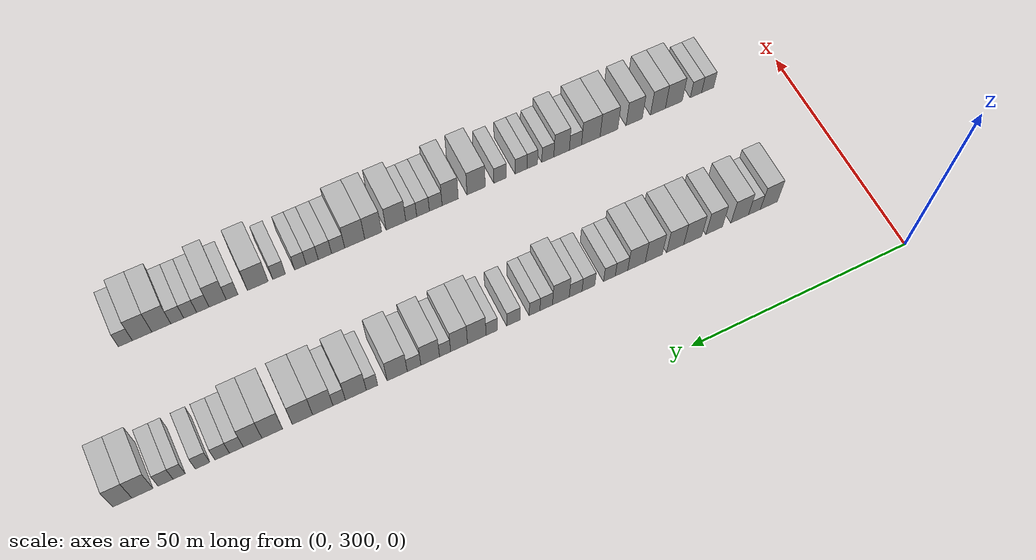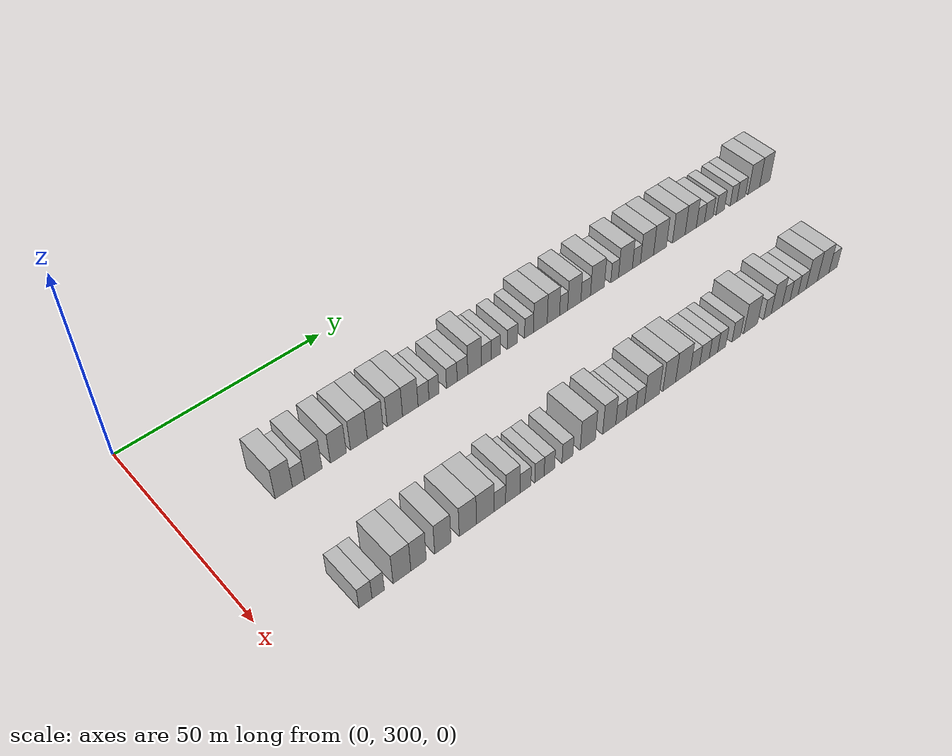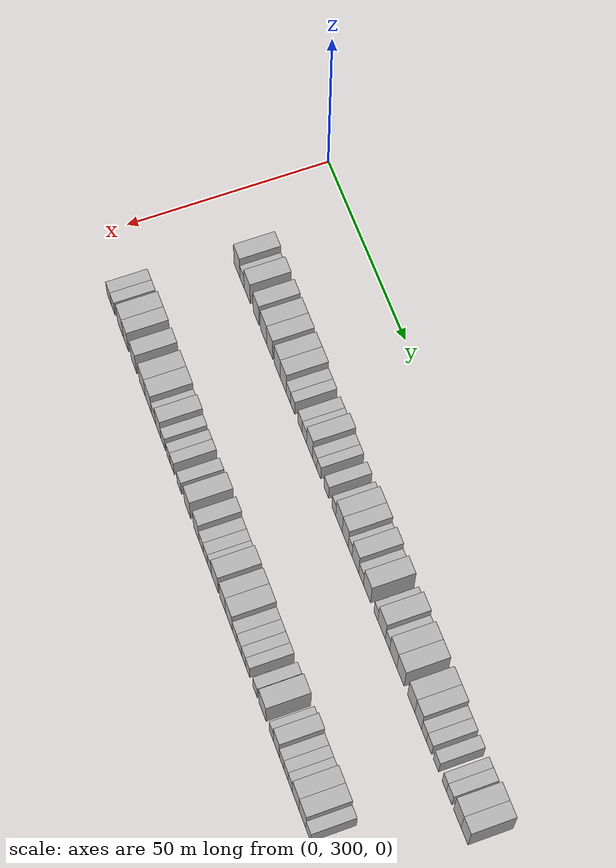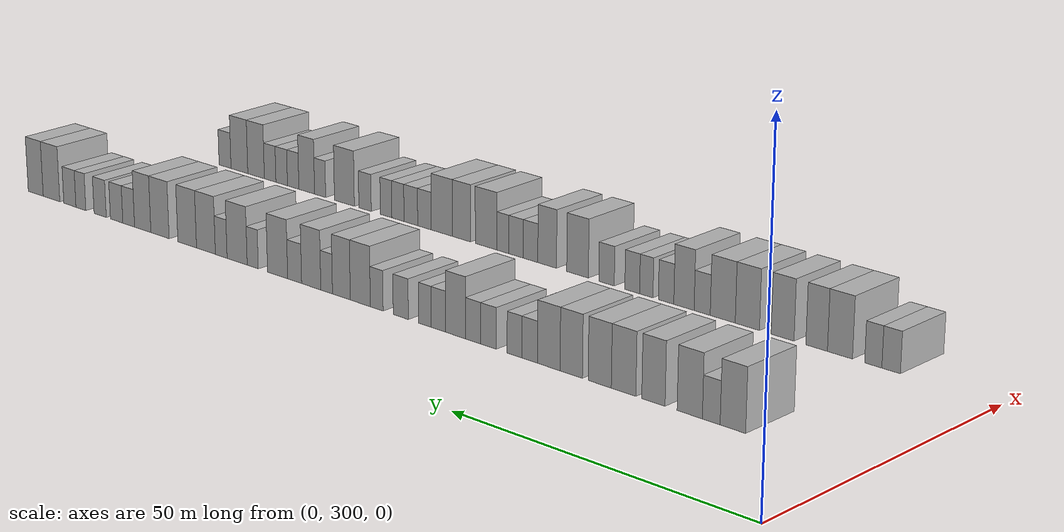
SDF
<sdf version="1.6">
 <world name="default">
  <model name="building_192">
   <static>1</static>
   <pose>25.0000 320.2041 0 0.000000 0.000000 0.000000</pose>
   <link name="link">
    <pose>0 0 4.50 0 0 0</pose>
    <collision name="collision"><geometry><box><size>10.0000 4.0921 9.0000</size></box></geometry></collision>
    <visual name="visual">
     <cast_shadows>0</cast_shadows>
     <geometry><box><size>10.0000 4.0921 9.0000</size></box></geometry>
     <material>
      <script>
       <uri>model://HANNAS_wall/materials/scripts</uri>
       <uri>model://HANNAS_wall/materials/textures</uri>
       <name>vrc/HANNAS_wall</name>
      </script>
     </material>
    </visual>
   </link>
  </model>
  <model name="building_193">
   <static>1</static>
   <pose>25.0000 323.6910 0 0.000000 0.000000 0.000000</pose>
   <link name="link">
    <pose>0 0 3.00 0 0 0</pose>
    <collision name="collision"><geometry><box><size>10.0000 2.8817 6.0000</size></box></geometry></collision>
    <visual name="visual">
     <cast_shadows>0</cast_shadows>
     <geometry><box><size>10.0000 2.8817 6.0000</size></box></geometry>
     <material>
      <script>
       <uri>model://HANNAS_wall/materials/scripts</uri>
       <uri>model://HANNAS_wall/materials/textures</uri>
       <name>vrc/HANNAS_wall</name>
      </script>
     </material>
    </visual>
   </link>
  </model>
  <model name="building_194">
   <static>1</static>
   <pose>25.0000 327.2083 0 0.000000 0.000000 0.000000</pose>
   <link name="link">
    <pose>0 0 4.50 0 0 0</pose>
    <collision name="collision"><geometry><box><size>10.0000 4.1529 9.0000</size></box></geometry></collision>
    <visual name="visual">
     <cast_shadows>0</cast_shadows>
     <geometry><box><size>10.0000 4.1529 9.0000</size></box></geometry>
     <material>
      <script>
       <uri>model://HANNAS_wall/materials/scripts</uri>
       <uri>model://HANNAS_wall/materials/textures</uri>
       <name>vrc/HANNAS_wall</name>
      </script>
     </material>
    </visual>
   </link>
  </model>
  <model name="building_195">
   <static>1</static>
   <pose>25.0000 333.2432 0 0.000000 0.000000 0.000000</pose>
   <link name="link">
    <pose>0 0 4.50 0 0 0</pose>
    <collision name="collision"><geometry><box><size>10.0000 3.9170 9.0000</size></box></geometry></collision>
    <visual name="visual">
     <cast_shadows>0</cast_shadows>
     <geometry><box><size>10.0000 3.9170 9.0000</size></box></geometry>
     <material>
      <script>
       <uri>model://HANNAS_wall/materials/scripts</uri>
       <uri>model://HANNAS_wall/materials/textures</uri>
       <name>vrc/HANNAS_wall</name>
      </script>
     </material>
    </visual>
   </link>
  </model>
  <model name="building_196">
   <static>1</static>
   <pose>25.0000 338.3030 0 0.000000 0.000000 0.000000</pose>
   <link name="link">
    <pose>0 0 4.50 0 0 0</pose>
    <collision name="collision"><geometry><box><size>10.0000 4.2027 9.0000</size></box></geometry></collision>
    <visual name="visual">
     <cast_shadows>0</cast_shadows>
     <geometry><box><size>10.0000 4.2027 9.0000</size></box></geometry>
     <material>
      <script>
       <uri>model://HANNAS_wall/materials/scripts</uri>
       <uri>model://HANNAS_wall/materials/textures</uri>
       <name>vrc/HANNAS_wall</name>
      </script>
     </material>
    </visual>
   </link>
  </model>
  <model name="building_197">
   <static>1</static>
   <pose>25.0000 342.4099 0 0.000000 0.000000 0.000000</pose>
   <link name="link">
    <pose>0 0 4.50 0 0 0</pose>
    <collision name="collision"><geometry><box><size>10.0000 4.0110 9.0000</size></box></geometry></collision>
    <visual name="visual">
     <cast_shadows>0</cast_shadows>
     <geometry><box><size>10.0000 4.0110 9.0000</size></box></geometry>
     <material>
      <script>
       <uri>model://HANNAS_wall/materials/scripts</uri>
       <uri>model://HANNAS_wall/materials/textures</uri>
       <name>vrc/HANNAS_wall</name>
      </script>
     </material>
    </visual>
   </link>
  </model>
  <model name="building_198">
   <static>1</static>
   <pose>25.0000 347.3904 0 0.000000 0.000000 0.000000</pose>
   <link name="link">
    <pose>0 0 4.50 0 0 0</pose>
    <collision name="collision"><geometry><box><size>10.0000 3.9500 9.0000</size></box></geometry></collision>
    <visual name="visual">
     <cast_shadows>0</cast_shadows>
     <geometry><box><size>10.0000 3.9500 9.0000</size></box></geometry>
     <material>
      <script>
       <uri>model://HANNAS_wall/materials/scripts</uri>
       <uri>model://HANNAS_wall/materials/textures</uri>
       <name>vrc/HANNAS_wall</name>
      </script>
     </material>
    </visual>
   </link>
  </model>
  <model name="building_199">
   <static>1</static>
   <pose>25.0000 351.3839 0 0.000000 0.000000 0.000000</pose>
   <link name="link">
    <pose>0 0 4.50 0 0 0</pose>
    <collision name="collision"><geometry><box><size>10.0000 4.0370 9.0000</size></box></geometry></collision>
    <visual name="visual">
     <cast_shadows>0</cast_shadows>
     <geometry><box><size>10.0000 4.0370 9.0000</size></box></geometry>
     <material>
      <script>
       <uri>model://HANNAS_wall/materials/scripts</uri>
       <uri>model://HANNAS_wall/materials/textures</uri>
       <name>vrc/HANNAS_wall</name>
      </script>
     </material>
    </visual>
   </link>
  </model>
  <model name="building_200">
   <static>1</static>
   <pose>25.0000 354.8347 0 0.000000 0.000000 0.000000</pose>
   <link name="link">
    <pose>0 0 3.00 0 0 0</pose>
    <collision name="collision"><geometry><box><size>10.0000 2.8646 6.0000</size></box></geometry></collision>
    <visual name="visual">
     <cast_shadows>0</cast_shadows>
     <geometry><box><size>10.0000 2.8646 6.0000</size></box></geometry>
     <material>
      <script>
       <uri>model://HANNAS_wall/materials/scripts</uri>
       <uri>model://HANNAS_wall/materials/textures</uri>
       <name>vrc/HANNAS_wall</name>
      </script>
     </material>
    </visual>
   </link>
  </model>
  <model name="building_201">
   <static>1</static>
   <pose>25.0000 357.5970 0 0.000000 0.000000 0.000000</pose>
   <link name="link">
    <pose>0 0 3.00 0 0 0</pose>
    <collision name="collision"><geometry><box><size>10.0000 2.6600 6.0000</size></box></geometry></collision>
    <visual name="visual">
     <cast_shadows>0</cast_shadows>
     <geometry><box><size>10.0000 2.6600 6.0000</size></box></geometry>
     <material>
      <script>
       <uri>model://HANNAS_wall/materials/scripts</uri>
       <uri>model://HANNAS_wall/materials/textures</uri>
       <name>vrc/HANNAS_wall</name>
      </script>
     </material>
    </visual>
   </link>
  </model>
  <model name="building_202">
   <static>1</static>
   <pose>25.0000 362.3696 0 0.000000 0.000000 0.000000</pose>
   <link name="link">
    <pose>0 0 3.00 0 0 0</pose>
    <collision name="collision"><geometry><box><size>10.0000 2.8851 6.0000</size></box></geometry></collision>
    <visual name="visual">
     <cast_shadows>0</cast_shadows>
     <geometry><box><size>10.0000 2.8851 6.0000</size></box></geometry>
     <material>
      <script>
       <uri>model://HANNAS_wall/materials/scripts</uri>
       <uri>model://HANNAS_wall/materials/textures</uri>
       <name>vrc/HANNAS_wall</name>
      </script>
     </material>
    </visual>
   </link>
  </model>
  <model name="building_203">
   <static>1</static>
   <pose>25.0000 365.2452 0 0.000000 0.000000 0.000000</pose>
   <link name="link">
    <pose>0 0 3.00 0 0 0</pose>
    <collision name="collision"><geometry><box><size>10.0000 2.8662 6.0000</size></box></geometry></collision>
    <visual name="visual">
     <cast_shadows>0</cast_shadows>
     <geometry><box><size>10.0000 2.8662 6.0000</size></box></geometry>
     <material>
      <script>
       <uri>model://HANNAS_wall/materials/scripts</uri>
       <uri>model://HANNAS_wall/materials/textures</uri>
       <name>vrc/HANNAS_wall</name>
      </script>
     </material>
    </visual>
   </link>
  </model>
  <model name="building_204">
   <static>1</static>
   <pose>25.0000 368.5611 0 0.000000 0.000000 0.000000</pose>
   <link name="link">
    <pose>0 0 4.50 0 0 0</pose>
    <collision name="collision"><geometry><box><size>10.0000 3.7656 9.0000</size></box></geometry></collision>
    <visual name="visual">
     <cast_shadows>0</cast_shadows>
     <geometry><box><size>10.0000 3.7656 9.0000</size></box></geometry>
     <material>
      <script>
       <uri>model://HANNAS_wall/materials/scripts</uri>
       <uri>model://HANNAS_wall/materials/textures</uri>
       <name>vrc/HANNAS_wall</name>
      </script>
     </material>
    </visual>
   </link>
  </model>
  <model name="building_205">
   <static>1</static>
   <pose>25.0000 371.8466 0 0.000000 0.000000 0.000000</pose>
   <link name="link">
    <pose>0 0 3.00 0 0 0</pose>
    <collision name="collision"><geometry><box><size>10.0000 2.8053 6.0000</size></box></geometry></collision>
    <visual name="visual">
     <cast_shadows>0</cast_shadows>
     <geometry><box><size>10.0000 2.8053 6.0000</size></box></geometry>
     <material>
      <script>
       <uri>model://HANNAS_wall/materials/scripts</uri>
       <uri>model://HANNAS_wall/materials/textures</uri>
       <name>vrc/HANNAS_wall</name>
      </script>
     </material>
    </visual>
   </link>
  </model>
  <model name="building_206">
   <static>1</static>
   <pose>25.0000 374.4504 0 0.000000 0.000000 0.000000</pose>
   <link name="link">
    <pose>0 0 3.00 0 0 0</pose>
    <collision name="collision"><geometry><box><size>10.0000 2.4022 6.0000</size></box></geometry></collision>
    <visual name="visual">
     <cast_shadows>0</cast_shadows>
     <geometry><box><size>10.0000 2.4022 6.0000</size></box></geometry>
     <material>
      <script>
       <uri>model://HANNAS_wall/materials/scripts</uri>
       <uri>model://HANNAS_wall/materials/textures</uri>
       <name>vrc/HANNAS_wall</name>
      </script>
     </material>
    </visual>
   </link>
  </model>
  <model name="building_207">
   <static>1</static>
   <pose>25.0000 379.1370 0 0.000000 0.000000 0.000000</pose>
   <link name="link">
    <pose>0 0 3.00 0 0 0</pose>
    <collision name="collision"><geometry><box><size>10.0000 2.9709 6.0000</size></box></geometry></collision>
    <visual name="visual">
     <cast_shadows>0</cast_shadows>
     <geometry><box><size>10.0000 2.9709 6.0000</size></box></geometry>
     <material>
      <script>
       <uri>model://HANNAS_wall/materials/scripts</uri>
       <uri>model://HANNAS_wall/materials/textures</uri>
       <name>vrc/HANNAS_wall</name>
      </script>
     </material>
    </visual>
   </link>
  </model>
  <model name="building_208">
   <static>1</static>
   <pose>25.0000 383.9000 0 0.000000 0.000000 0.000000</pose>
   <link name="link">
    <pose>0 0 3.00 0 0 0</pose>
    <collision name="collision"><geometry><box><size>10.0000 2.5552 6.0000</size></box></geometry></collision>
    <visual name="visual">
     <cast_shadows>0</cast_shadows>
     <geometry><box><size>10.0000 2.5552 6.0000</size></box></geometry>
     <material>
      <script>
       <uri>model://HANNAS_wall/materials/scripts</uri>
       <uri>model://HANNAS_wall/materials/textures</uri>
       <name>vrc/HANNAS_wall</name>
      </script>
     </material>
    </visual>
   </link>
  </model>
  <model name="building_209">
   <static>1</static>
   <pose>25.0000 387.1963 0 0.000000 0.000000 0.000000</pose>
   <link name="link">
    <pose>0 0 4.50 0 0 0</pose>
    <collision name="collision"><geometry><box><size>10.0000 4.0375 9.0000</size></box></geometry></collision>
    <visual name="visual">
     <cast_shadows>0</cast_shadows>
     <geometry><box><size>10.0000 4.0375 9.0000</size></box></geometry>
     <material>
      <script>
       <uri>model://HANNAS_wall/materials/scripts</uri>
       <uri>model://HANNAS_wall/materials/textures</uri>
       <name>vrc/HANNAS_wall</name>
      </script>
     </material>
    </visual>
   </link>
  </model>
  <model name="building_210">
   <static>1</static>
   <pose>25.0000 391.0380 0 0.000000 0.000000 0.000000</pose>
   <link name="link">
    <pose>0 0 4.50 0 0 0</pose>
    <collision name="collision"><geometry><box><size>10.0000 3.6460 9.0000</size></box></geometry></collision>
    <visual name="visual">
     <cast_shadows>0</cast_shadows>
     <geometry><box><size>10.0000 3.6460 9.0000</size></box></geometry>
     <material>
      <script>
       <uri>model://HANNAS_wall/materials/scripts</uri>
       <uri>model://HANNAS_wall/materials/textures</uri>
       <name>vrc/HANNAS_wall</name>
      </script>
     </material>
    </visual>
   </link>
  </model>
  <model name="building_211">
   <static>1</static>
   <pose>25.0000 394.0642 0 0.000000 0.000000 0.000000</pose>
   <link name="link">
    <pose>0 0 3.00 0 0 0</pose>
    <collision name="collision"><geometry><box><size>10.0000 2.4063 6.0000</size></box></geometry></collision>
    <visual name="visual">
     <cast_shadows>0</cast_shadows>
     <geometry><box><size>10.0000 2.4063 6.0000</size></box></geometry>
     <material>
      <script>
       <uri>model://HANNAS_wall/materials/scripts</uri>
       <uri>model://HANNAS_wall/materials/textures</uri>
       <name>vrc/HANNAS_wall</name>
      </script>
     </material>
    </visual>
   </link>
  </model>
  <model name="building_212">
   <static>1</static>
   <pose>25.0000 397.2676 0 0.000000 0.000000 0.000000</pose>
   <link name="link">
    <pose>0 0 4.50 0 0 0</pose>
    <collision name="collision"><geometry><box><size>10.0000 4.0007 9.0000</size></box></geometry></collision>
    <visual name="visual">
     <cast_shadows>0</cast_shadows>
     <geometry><box><size>10.0000 4.0007 9.0000</size></box></geometry>
     <material>
      <script>
       <uri>model://HANNAS_wall/materials/scripts</uri>
       <uri>model://HANNAS_wall/materials/textures</uri>
       <name>vrc/HANNAS_wall</name>
      </script>
     </material>
    </visual>
   </link>
  </model>
  <model name="building_213">
   <static>1</static>
   <pose>25.0000 400.7352 0 0.000000 0.000000 0.000000</pose>
   <link name="link">
    <pose>0 0 3.00 0 0 0</pose>
    <collision name="collision"><geometry><box><size>10.0000 2.9345 6.0000</size></box></geometry></collision>
    <visual name="visual">
     <cast_shadows>0</cast_shadows>
     <geometry><box><size>10.0000 2.9345 6.0000</size></box></geometry>
     <material>
      <script>
       <uri>model://HANNAS_wall/materials/scripts</uri>
       <uri>model://HANNAS_wall/materials/textures</uri>
       <name>vrc/HANNAS_wall</name>
      </script>
     </material>
    </visual>
   </link>
  </model>
  <model name="building_214">
   <static>1</static>
   <pose>25.0000 404.3452 0 0.000000 0.000000 0.000000</pose>
   <link name="link">
    <pose>0 0 4.50 0 0 0</pose>
    <collision name="collision"><geometry><box><size>10.0000 4.2856 9.0000</size></box></geometry></collision>
    <visual name="visual">
     <cast_shadows>0</cast_shadows>
     <geometry><box><size>10.0000 4.2856 9.0000</size></box></geometry>
     <material>
      <script>
       <uri>model://HANNAS_wall/materials/scripts</uri>
       <uri>model://HANNAS_wall/materials/textures</uri>
       <name>vrc/HANNAS_wall</name>
      </script>
     </material>
    </visual>
   </link>
  </model>
  <model name="building_215">
   <static>1</static>
   <pose>25.0000 409.6885 0 0.000000 0.000000 0.000000</pose>
   <link name="link">
    <pose>0 0 3.00 0 0 0</pose>
    <collision name="collision"><geometry><box><size>10.0000 2.4009 6.0000</size></box></geometry></collision>
    <visual name="visual">
     <cast_shadows>0</cast_shadows>
     <geometry><box><size>10.0000 2.4009 6.0000</size></box></geometry>
     <material>
      <script>
       <uri>model://HANNAS_wall/materials/scripts</uri>
       <uri>model://HANNAS_wall/materials/textures</uri>
       <name>vrc/HANNAS_wall</name>
      </script>
     </material>
    </visual>
   </link>
  </model>
  <model name="building_216">
   <static>1</static>
   <pose>25.0000 413.0924 0 0.000000 0.000000 0.000000</pose>
   <link name="link">
    <pose>0 0 4.50 0 0 0</pose>
    <collision name="collision"><geometry><box><size>10.0000 4.4070 9.0000</size></box></geometry></collision>
    <visual name="visual">
     <cast_shadows>0</cast_shadows>
     <geometry><box><size>10.0000 4.4070 9.0000</size></box></geometry>
     <material>
      <script>
       <uri>model://HANNAS_wall/materials/scripts</uri>
       <uri>model://HANNAS_wall/materials/textures</uri>
       <name>vrc/HANNAS_wall</name>
      </script>
     </material>
    </visual>
   </link>
  </model>
  <model name="building_217">
   <static>1</static>
   <pose>25.0000 416.5932 0 0.000000 0.000000 0.000000</pose>
   <link name="link">
    <pose>0 0 3.00 0 0 0</pose>
    <collision name="collision"><geometry><box><size>10.0000 2.5945 6.0000</size></box></geometry></collision>
    <visual name="visual">
     <cast_shadows>0</cast_shadows>
     <geometry><box><size>10.0000 2.5945 6.0000</size></box></geometry>
     <material>
      <script>
       <uri>model://HANNAS_wall/materials/scripts</uri>
       <uri>model://HANNAS_wall/materials/textures</uri>
       <name>vrc/HANNAS_wall</name>
      </script>
     </material>
    </visual>
   </link>
  </model>
  <model name="building_218">
   <static>1</static>
   <pose>25.0000 420.0022 0 0.000000 0.000000 0.000000</pose>
   <link name="link">
    <pose>0 0 4.50 0 0 0</pose>
    <collision name="collision"><geometry><box><size>10.0000 4.2235 9.0000</size></box></geometry></collision>
    <visual name="visual">
     <cast_shadows>0</cast_shadows>
     <geometry><box><size>10.0000 4.2235 9.0000</size></box></geometry>
     <material>
      <script>
       <uri>model://HANNAS_wall/materials/scripts</uri>
       <uri>model://HANNAS_wall/materials/textures</uri>
       <name>vrc/HANNAS_wall</name>
      </script>
     </material>
    </visual>
   </link>
  </model>
  <model name="building_219">
   <static>1</static>
   <pose>25.0000 424.2267 0 0.000000 0.000000 0.000000</pose>
   <link name="link">
    <pose>0 0 4.50 0 0 0</pose>
    <collision name="collision"><geometry><box><size>10.0000 4.2254 9.0000</size></box></geometry></collision>
    <visual name="visual">
     <cast_shadows>0</cast_shadows>
     <geometry><box><size>10.0000 4.2254 9.0000</size></box></geometry>
     <material>
      <script>
       <uri>model://HANNAS_wall/materials/scripts</uri>
       <uri>model://HANNAS_wall/materials/textures</uri>
       <name>vrc/HANNAS_wall</name>
      </script>
     </material>
    </visual>
   </link>
  </model>
  <model name="building_220">
   <static>1</static>
   <pose>25.0000 430.4475 0 0.000000 0.000000 0.000000</pose>
   <link name="link">
    <pose>0 0 4.50 0 0 0</pose>
    <collision name="collision"><geometry><box><size>10.0000 4.2161 9.0000</size></box></geometry></collision>
    <visual name="visual">
     <cast_shadows>0</cast_shadows>
     <geometry><box><size>10.0000 4.2161 9.0000</size></box></geometry>
     <material>
      <script>
       <uri>model://HANNAS_wall/materials/scripts</uri>
       <uri>model://HANNAS_wall/materials/textures</uri>
       <name>vrc/HANNAS_wall</name>
      </script>
     </material>
    </visual>
   </link>
  </model>
  <model name="building_221">
   <static>1</static>
   <pose>25.0000 434.4631 0 0.000000 0.000000 0.000000</pose>
   <link name="link">
    <pose>0 0 4.50 0 0 0</pose>
    <collision name="collision"><geometry><box><size>10.0000 3.8151 9.0000</size></box></geometry></collision>
    <visual name="visual">
     <cast_shadows>0</cast_shadows>
     <geometry><box><size>10.0000 3.8151 9.0000</size></box></geometry>
     <material>
      <script>
       <uri>model://HANNAS_wall/materials/scripts</uri>
       <uri>model://HANNAS_wall/materials/textures</uri>
       <name>vrc/HANNAS_wall</name>
      </script>
     </material>
    </visual>
   </link>
  </model>
  <model name="building_222">
   <static>1</static>
   <pose>25.0000 437.7582 0 0.000000 0.000000 0.000000</pose>
   <link name="link">
    <pose>0 0 3.00 0 0 0</pose>
    <collision name="collision"><geometry><box><size>10.0000 2.7752 6.0000</size></box></geometry></collision>
    <visual name="visual">
     <cast_shadows>0</cast_shadows>
     <geometry><box><size>10.0000 2.7752 6.0000</size></box></geometry>
     <material>
      <script>
       <uri>model://HANNAS_wall/materials/scripts</uri>
       <uri>model://HANNAS_wall/materials/textures</uri>
       <name>vrc/HANNAS_wall</name>
      </script>
     </material>
    </visual>
   </link>
  </model>
  <model name="building_223">
   <static>1</static>
   <pose>25.0000 440.6237 0 0.000000 0.000000 0.000000</pose>
   <link name="link">
    <pose>0 0 3.00 0 0 0</pose>
    <collision name="collision"><geometry><box><size>10.0000 2.9558 6.0000</size></box></geometry></collision>
    <visual name="visual">
     <cast_shadows>0</cast_shadows>
     <geometry><box><size>10.0000 2.9558 6.0000</size></box></geometry>
     <material>
      <script>
       <uri>model://HANNAS_wall/materials/scripts</uri>
       <uri>model://HANNAS_wall/materials/textures</uri>
       <name>vrc/HANNAS_wall</name>
      </script>
     </material>
    </visual>
   </link>
  </model>
  <model name="building_224">
   <static>1</static>
   <pose>25.0000 444.5673 0 0.000000 0.000000 0.000000</pose>
   <link name="link">
    <pose>0 0 3.00 0 0 0</pose>
    <collision name="collision"><geometry><box><size>10.0000 2.9314 6.0000</size></box></geometry></collision>
    <visual name="visual">
     <cast_shadows>0</cast_shadows>
     <geometry><box><size>10.0000 2.9314 6.0000</size></box></geometry>
     <material>
      <script>
       <uri>model://HANNAS_wall/materials/scripts</uri>
       <uri>model://HANNAS_wall/materials/textures</uri>
       <name>vrc/HANNAS_wall</name>
      </script>
     </material>
    </visual>
   </link>
  </model>
  <model name="building_225">
   <static>1</static>
   <pose>25.0000 449.2459 0 0.000000 0.000000 0.000000</pose>
   <link name="link">
    <pose>0 0 3.00 0 0 0</pose>
    <collision name="collision"><geometry><box><size>10.0000 2.4259 6.0000</size></box></geometry></collision>
    <visual name="visual">
     <cast_shadows>0</cast_shadows>
     <geometry><box><size>10.0000 2.4259 6.0000</size></box></geometry>
     <material>
      <script>
       <uri>model://HANNAS_wall/materials/scripts</uri>
       <uri>model://HANNAS_wall/materials/textures</uri>
       <name>vrc/HANNAS_wall</name>
      </script>
     </material>
    </visual>
   </link>
  </model>
  <model name="building_226">
   <static>1</static>
   <pose>25.0000 451.9480 0 0.000000 0.000000 0.000000</pose>
   <link name="link">
    <pose>0 0 3.00 0 0 0</pose>
    <collision name="collision"><geometry><box><size>10.0000 2.9783 6.0000</size></box></geometry></collision>
    <visual name="visual">
     <cast_shadows>0</cast_shadows>
     <geometry><box><size>10.0000 2.9783 6.0000</size></box></geometry>
     <material>
      <script>
       <uri>model://HANNAS_wall/materials/scripts</uri>
       <uri>model://HANNAS_wall/materials/textures</uri>
       <name>vrc/HANNAS_wall</name>
      </script>
     </material>
    </visual>
   </link>
  </model>
  <model name="building_227">
   <static>1</static>
   <pose>25.0000 456.5043 0 0.000000 0.000000 0.000000</pose>
   <link name="link">
    <pose>0 0 4.50 0 0 0</pose>
    <collision name="collision"><geometry><box><size>10.0000 4.1343 9.0000</size></box></geometry></collision>
    <visual name="visual">
     <cast_shadows>0</cast_shadows>
     <geometry><box><size>10.0000 4.1343 9.0000</size></box></geometry>
     <material>
      <script>
       <uri>model://HANNAS_wall/materials/scripts</uri>
       <uri>model://HANNAS_wall/materials/textures</uri>
       <name>vrc/HANNAS_wall</name>
      </script>
     </material>
    </visual>
   </link>
  </model>
  <model name="building_228">
   <static>1</static>
   <pose>25.0000 460.4600 0 0.000000 0.000000 0.000000</pose>
   <link name="link">
    <pose>0 0 4.50 0 0 0</pose>
    <collision name="collision"><geometry><box><size>10.0000 3.7772 9.0000</size></box></geometry></collision>
    <visual name="visual">
     <cast_shadows>0</cast_shadows>
     <geometry><box><size>10.0000 3.7772 9.0000</size></box></geometry>
     <material>
      <script>
       <uri>model://HANNAS_wall/materials/scripts</uri>
       <uri>model://HANNAS_wall/materials/textures</uri>
       <name>vrc/HANNAS_wall</name>
      </script>
     </material>
    </visual>
   </link>
  </model>
  <model name="building_413">
   <static>1</static>
   <pose>55.0000 317.3429 0 0.000000 0.000000 0.000000</pose>
   <link name="link">
    <pose>0 0 3.00 0 0 0</pose>
    <collision name="collision"><geometry><box><size>10.0000 2.9941 6.0000</size></box></geometry></collision>
    <visual name="visual">
     <cast_shadows>0</cast_shadows>
     <geometry><box><size>10.0000 2.9941 6.0000</size></box></geometry>
     <material>
      <script>
       <uri>model://HANNAS_wall/materials/scripts</uri>
       <uri>model://HANNAS_wall/materials/textures</uri>
       <name>vrc/HANNAS_wall</name>
      </script>
     </material>
    </visual>
   </link>
  </model>
  <model name="building_414">
   <static>1</static>
   <pose>55.0000 320.2412 0 0.000000 0.000000 0.000000</pose>
   <link name="link">
    <pose>0 0 3.00 0 0 0</pose>
    <collision name="collision"><geometry><box><size>10.0000 2.8025 6.0000</size></box></geometry></collision>
    <visual name="visual">
     <cast_shadows>0</cast_shadows>
     <geometry><box><size>10.0000 2.8025 6.0000</size></box></geometry>
     <material>
      <script>
       <uri>model://HANNAS_wall/materials/scripts</uri>
       <uri>model://HANNAS_wall/materials/textures</uri>
       <name>vrc/HANNAS_wall</name>
      </script>
     </material>
    </visual>
   </link>
  </model>
  <model name="building_415">
   <static>1</static>
   <pose>55.0000 325.7208 0 0.000000 0.000000 0.000000</pose>
   <link name="link">
    <pose>0 0 4.50 0 0 0</pose>
    <collision name="collision"><geometry><box><size>10.0000 4.1566 9.0000</size></box></geometry></collision>
    <visual name="visual">
     <cast_shadows>0</cast_shadows>
     <geometry><box><size>10.0000 4.1566 9.0000</size></box></geometry>
     <material>
      <script>
       <uri>model://HANNAS_wall/materials/scripts</uri>
       <uri>model://HANNAS_wall/materials/textures</uri>
       <name>vrc/HANNAS_wall</name>
      </script>
     </material>
    </visual>
   </link>
  </model>
  <model name="building_416">
   <static>1</static>
   <pose>55.0000 329.6175 0 0.000000 0.000000 0.000000</pose>
   <link name="link">
    <pose>0 0 4.50 0 0 0</pose>
    <collision name="collision"><geometry><box><size>10.0000 3.6368 9.0000</size></box></geometry></collision>
    <visual name="visual">
     <cast_shadows>0</cast_shadows>
     <geometry><box><size>10.0000 3.6368 9.0000</size></box></geometry>
     <material>
      <script>
       <uri>model://HANNAS_wall/materials/scripts</uri>
       <uri>model://HANNAS_wall/materials/textures</uri>
       <name>vrc/HANNAS_wall</name>
      </script>
     </material>
    </visual>
   </link>
  </model>
  <model name="building_417">
   <static>1</static>
   <pose>55.0000 335.4066 0 0.000000 0.000000 0.000000</pose>
   <link name="link">
    <pose>0 0 4.50 0 0 0</pose>
    <collision name="collision"><geometry><box><size>10.0000 3.9414 9.0000</size></box></geometry></collision>
    <visual name="visual">
     <cast_shadows>0</cast_shadows>
     <geometry><box><size>10.0000 3.9414 9.0000</size></box></geometry>
     <material>
      <script>
       <uri>model://HANNAS_wall/materials/scripts</uri>
       <uri>model://HANNAS_wall/materials/textures</uri>
       <name>vrc/HANNAS_wall</name>
      </script>
     </material>
    </visual>
   </link>
  </model>
  <model name="building_418">
   <static>1</static>
   <pose>55.0000 341.5016 0 0.000000 0.000000 0.000000</pose>
   <link name="link">
    <pose>0 0 4.50 0 0 0</pose>
    <collision name="collision"><geometry><box><size>10.0000 4.2486 9.0000</size></box></geometry></collision>
    <visual name="visual">
     <cast_shadows>0</cast_shadows>
     <geometry><box><size>10.0000 4.2486 9.0000</size></box></geometry>
     <material>
      <script>
       <uri>model://HANNAS_wall/materials/scripts</uri>
       <uri>model://HANNAS_wall/materials/textures</uri>
       <name>vrc/HANNAS_wall</name>
      </script>
     </material>
    </visual>
   </link>
  </model>
  <model name="building_419">
   <static>1</static>
   <pose>55.0000 345.8499 0 0.000000 0.000000 0.000000</pose>
   <link name="link">
    <pose>0 0 4.50 0 0 0</pose>
    <collision name="collision"><geometry><box><size>10.0000 4.4479 9.0000</size></box></geometry></collision>
    <visual name="visual">
     <cast_shadows>0</cast_shadows>
     <geometry><box><size>10.0000 4.4479 9.0000</size></box></geometry>
     <material>
      <script>
       <uri>model://HANNAS_wall/materials/scripts</uri>
       <uri>model://HANNAS_wall/materials/textures</uri>
       <name>vrc/HANNAS_wall</name>
      </script>
     </material>
    </visual>
   </link>
  </model>
  <model name="building_420">
   <static>1</static>
   <pose>55.0000 349.5216 0 0.000000 0.000000 0.000000</pose>
   <link name="link">
    <pose>0 0 3.00 0 0 0</pose>
    <collision name="collision"><geometry><box><size>10.0000 2.8955 6.0000</size></box></geometry></collision>
    <visual name="visual">
     <cast_shadows>0</cast_shadows>
     <geometry><box><size>10.0000 2.8955 6.0000</size></box></geometry>
     <material>
      <script>
       <uri>model://HANNAS_wall/materials/scripts</uri>
       <uri>model://HANNAS_wall/materials/textures</uri>
       <name>vrc/HANNAS_wall</name>
      </script>
     </material>
    </visual>
   </link>
  </model>
  <model name="building_421">
   <static>1</static>
   <pose>55.0000 352.8133 0 0.000000 0.000000 0.000000</pose>
   <link name="link">
    <pose>0 0 4.50 0 0 0</pose>
    <collision name="collision"><geometry><box><size>10.0000 3.6880 9.0000</size></box></geometry></collision>
    <visual name="visual">
     <cast_shadows>0</cast_shadows>
     <geometry><box><size>10.0000 3.6880 9.0000</size></box></geometry>
     <material>
      <script>
       <uri>model://HANNAS_wall/materials/scripts</uri>
       <uri>model://HANNAS_wall/materials/textures</uri>
       <name>vrc/HANNAS_wall</name>
      </script>
     </material>
    </visual>
   </link>
  </model>
  <model name="building_422">
   <static>1</static>
   <pose>55.0000 356.0743 0 0.000000 0.000000 0.000000</pose>
   <link name="link">
    <pose>0 0 3.00 0 0 0</pose>
    <collision name="collision"><geometry><box><size>10.0000 2.8339 6.0000</size></box></geometry></collision>
    <visual name="visual">
     <cast_shadows>0</cast_shadows>
     <geometry><box><size>10.0000 2.8339 6.0000</size></box></geometry>
     <material>
      <script>
       <uri>model://HANNAS_wall/materials/scripts</uri>
       <uri>model://HANNAS_wall/materials/textures</uri>
       <name>vrc/HANNAS_wall</name>
      </script>
     </material>
    </visual>
   </link>
  </model>
  <model name="building_423">
   <static>1</static>
   <pose>55.0000 359.7311 0 0.000000 0.000000 0.000000</pose>
   <link name="link">
    <pose>0 0 3.00 0 0 0</pose>
    <collision name="collision"><geometry><box><size>10.0000 2.4797 6.0000</size></box></geometry></collision>
    <visual name="visual">
     <cast_shadows>0</cast_shadows>
     <geometry><box><size>10.0000 2.4797 6.0000</size></box></geometry>
     <material>
      <script>
       <uri>model://HANNAS_wall/materials/scripts</uri>
       <uri>model://HANNAS_wall/materials/textures</uri>
       <name>vrc/HANNAS_wall</name>
      </script>
     </material>
    </visual>
   </link>
  </model>
  <model name="building_424">
   <static>1</static>
   <pose>55.0000 362.3566 0 0.000000 0.000000 0.000000</pose>
   <link name="link">
    <pose>0 0 3.00 0 0 0</pose>
    <collision name="collision"><geometry><box><size>10.0000 2.7712 6.0000</size></box></geometry></collision>
    <visual name="visual">
     <cast_shadows>0</cast_shadows>
     <geometry><box><size>10.0000 2.7712 6.0000</size></box></geometry>
     <material>
      <script>
       <uri>model://HANNAS_wall/materials/scripts</uri>
       <uri>model://HANNAS_wall/materials/textures</uri>
       <name>vrc/HANNAS_wall</name>
      </script>
     </material>
    </visual>
   </link>
  </model>
  <model name="building_425">
   <static>1</static>
   <pose>55.0000 367.2113 0 0.000000 0.000000 0.000000</pose>
   <link name="link">
    <pose>0 0 3.00 0 0 0</pose>
    <collision name="collision"><geometry><box><size>10.0000 2.9382 6.0000</size></box></geometry></collision>
    <visual name="visual">
     <cast_shadows>0</cast_shadows>
     <geometry><box><size>10.0000 2.9382 6.0000</size></box></geometry>
     <material>
      <script>
       <uri>model://HANNAS_wall/materials/scripts</uri>
       <uri>model://HANNAS_wall/materials/textures</uri>
       <name>vrc/HANNAS_wall</name>
      </script>
     </material>
    </visual>
   </link>
  </model>
  <model name="building_426">
   <static>1</static>
   <pose>55.0000 372.7798 0 0.000000 0.000000 0.000000</pose>
   <link name="link">
    <pose>0 0 4.50 0 0 0</pose>
    <collision name="collision"><geometry><box><size>10.0000 4.1989 9.0000</size></box></geometry></collision>
    <visual name="visual">
     <cast_shadows>0</cast_shadows>
     <geometry><box><size>10.0000 4.1989 9.0000</size></box></geometry>
     <material>
      <script>
       <uri>model://HANNAS_wall/materials/scripts</uri>
       <uri>model://HANNAS_wall/materials/textures</uri>
       <name>vrc/HANNAS_wall</name>
      </script>
     </material>
    </visual>
   </link>
  </model>
  <model name="building_427">
   <static>1</static>
   <pose>55.0000 378.7235 0 0.000000 0.000000 0.000000</pose>
   <link name="link">
    <pose>0 0 4.50 0 0 0</pose>
    <collision name="collision"><geometry><box><size>10.0000 3.6886 9.0000</size></box></geometry></collision>
    <visual name="visual">
     <cast_shadows>0</cast_shadows>
     <geometry><box><size>10.0000 3.6886 9.0000</size></box></geometry>
     <material>
      <script>
       <uri>model://HANNAS_wall/materials/scripts</uri>
       <uri>model://HANNAS_wall/materials/textures</uri>
       <name>vrc/HANNAS_wall</name>
      </script>
     </material>
    </visual>
   </link>
  </model>
  <model name="building_428">
   <static>1</static>
   <pose>55.0000 382.0170 0 0.000000 0.000000 0.000000</pose>
   <link name="link">
    <pose>0 0 3.00 0 0 0</pose>
    <collision name="collision"><geometry><box><size>10.0000 2.8984 6.0000</size></box></geometry></collision>
    <visual name="visual">
     <cast_shadows>0</cast_shadows>
     <geometry><box><size>10.0000 2.8984 6.0000</size></box></geometry>
     <material>
      <script>
       <uri>model://HANNAS_wall/materials/scripts</uri>
       <uri>model://HANNAS_wall/materials/textures</uri>
       <name>vrc/HANNAS_wall</name>
      </script>
     </material>
    </visual>
   </link>
  </model>
  <model name="building_429">
   <static>1</static>
   <pose>55.0000 384.9036 0 0.000000 0.000000 0.000000</pose>
   <link name="link">
    <pose>0 0 3.00 0 0 0</pose>
    <collision name="collision"><geometry><box><size>10.0000 2.8748 6.0000</size></box></geometry></collision>
    <visual name="visual">
     <cast_shadows>0</cast_shadows>
     <geometry><box><size>10.0000 2.8748 6.0000</size></box></geometry>
     <material>
      <script>
       <uri>model://HANNAS_wall/materials/scripts</uri>
       <uri>model://HANNAS_wall/materials/textures</uri>
       <name>vrc/HANNAS_wall</name>
      </script>
     </material>
    </visual>
   </link>
  </model>
  <model name="building_430">
   <static>1</static>
   <pose>55.0000 387.5706 0 0.000000 0.000000 0.000000</pose>
   <link name="link">
    <pose>0 0 3.00 0 0 0</pose>
    <collision name="collision"><geometry><box><size>10.0000 2.4592 6.0000</size></box></geometry></collision>
    <visual name="visual">
     <cast_shadows>0</cast_shadows>
     <geometry><box><size>10.0000 2.4592 6.0000</size></box></geometry>
     <material>
      <script>
       <uri>model://HANNAS_wall/materials/scripts</uri>
       <uri>model://HANNAS_wall/materials/textures</uri>
       <name>vrc/HANNAS_wall</name>
      </script>
     </material>
    </visual>
   </link>
  </model>
  <model name="building_431">
   <static>1</static>
   <pose>55.0000 391.0101 0 0.000000 0.000000 0.000000</pose>
   <link name="link">
    <pose>0 0 4.50 0 0 0</pose>
    <collision name="collision"><geometry><box><size>10.0000 4.4197 9.0000</size></box></geometry></collision>
    <visual name="visual">
     <cast_shadows>0</cast_shadows>
     <geometry><box><size>10.0000 4.4197 9.0000</size></box></geometry>
     <material>
      <script>
       <uri>model://HANNAS_wall/materials/scripts</uri>
       <uri>model://HANNAS_wall/materials/textures</uri>
       <name>vrc/HANNAS_wall</name>
      </script>
     </material>
    </visual>
   </link>
  </model>
  <model name="building_432">
   <static>1</static>
   <pose>55.0000 396.1065 0 0.000000 0.000000 0.000000</pose>
   <link name="link">
    <pose>0 0 4.50 0 0 0</pose>
    <collision name="collision"><geometry><box><size>10.0000 3.7731 9.0000</size></box></geometry></collision>
    <visual name="visual">
     <cast_shadows>0</cast_shadows>
     <geometry><box><size>10.0000 3.7731 9.0000</size></box></geometry>
     <material>
      <script>
       <uri>model://HANNAS_wall/materials/scripts</uri>
       <uri>model://HANNAS_wall/materials/textures</uri>
       <name>vrc/HANNAS_wall</name>
      </script>
     </material>
    </visual>
   </link>
  </model>
  <model name="building_433">
   <static>1</static>
   <pose>55.0000 400.2122 0 0.000000 0.000000 0.000000</pose>
   <link name="link">
    <pose>0 0 4.50 0 0 0</pose>
    <collision name="collision"><geometry><box><size>10.0000 4.4384 9.0000</size></box></geometry></collision>
    <visual name="visual">
     <cast_shadows>0</cast_shadows>
     <geometry><box><size>10.0000 4.4384 9.0000</size></box></geometry>
     <material>
      <script>
       <uri>model://HANNAS_wall/materials/scripts</uri>
       <uri>model://HANNAS_wall/materials/textures</uri>
       <name>vrc/HANNAS_wall</name>
      </script>
     </material>
    </visual>
   </link>
  </model>
  <model name="building_434">
   <static>1</static>
   <pose>55.0000 403.8818 0 0.000000 0.000000 0.000000</pose>
   <link name="link">
    <pose>0 0 3.00 0 0 0</pose>
    <collision name="collision"><geometry><box><size>10.0000 2.9007 6.0000</size></box></geometry></collision>
    <visual name="visual">
     <cast_shadows>0</cast_shadows>
     <geometry><box><size>10.0000 2.9007 6.0000</size></box></geometry>
     <material>
      <script>
       <uri>model://HANNAS_wall/materials/scripts</uri>
       <uri>model://HANNAS_wall/materials/textures</uri>
       <name>vrc/HANNAS_wall</name>
      </script>
     </material>
    </visual>
   </link>
  </model>
  <model name="building_435">
   <static>1</static>
   <pose>55.0000 406.8028 0 0.000000 0.000000 0.000000</pose>
   <link name="link">
    <pose>0 0 3.00 0 0 0</pose>
    <collision name="collision"><geometry><box><size>10.0000 2.9414 6.0000</size></box></geometry></collision>
    <visual name="visual">
     <cast_shadows>0</cast_shadows>
     <geometry><box><size>10.0000 2.9414 6.0000</size></box></geometry>
     <material>
      <script>
       <uri>model://HANNAS_wall/materials/scripts</uri>
       <uri>model://HANNAS_wall/materials/textures</uri>
       <name>vrc/HANNAS_wall</name>
      </script>
     </material>
    </visual>
   </link>
  </model>
  <model name="building_436">
   <static>1</static>
   <pose>55.0000 409.5921 0 0.000000 0.000000 0.000000</pose>
   <link name="link">
    <pose>0 0 3.00 0 0 0</pose>
    <collision name="collision"><geometry><box><size>10.0000 2.6373 6.0000</size></box></geometry></collision>
    <visual name="visual">
     <cast_shadows>0</cast_shadows>
     <geometry><box><size>10.0000 2.6373 6.0000</size></box></geometry>
     <material>
      <script>
       <uri>model://HANNAS_wall/materials/scripts</uri>
       <uri>model://HANNAS_wall/materials/textures</uri>
       <name>vrc/HANNAS_wall</name>
      </script>
     </material>
    </visual>
   </link>
  </model>
  <model name="building_437">
   <static>1</static>
   <pose>55.0000 412.1668 0 0.000000 0.000000 0.000000</pose>
   <link name="link">
    <pose>0 0 3.00 0 0 0</pose>
    <collision name="collision"><geometry><box><size>10.0000 2.5122 6.0000</size></box></geometry></collision>
    <visual name="visual">
     <cast_shadows>0</cast_shadows>
     <geometry><box><size>10.0000 2.5122 6.0000</size></box></geometry>
     <material>
      <script>
       <uri>model://HANNAS_wall/materials/scripts</uri>
       <uri>model://HANNAS_wall/materials/textures</uri>
       <name>vrc/HANNAS_wall</name>
      </script>
     </material>
    </visual>
   </link>
  </model>
  <model name="building_438">
   <static>1</static>
   <pose>55.0000 416.7985 0 0.000000 0.000000 0.000000</pose>
   <link name="link">
    <pose>0 0 3.00 0 0 0</pose>
    <collision name="collision"><geometry><box><size>10.0000 2.7511 6.0000</size></box></geometry></collision>
    <visual name="visual">
     <cast_shadows>0</cast_shadows>
     <geometry><box><size>10.0000 2.7511 6.0000</size></box></geometry>
     <material>
      <script>
       <uri>model://HANNAS_wall/materials/scripts</uri>
       <uri>model://HANNAS_wall/materials/textures</uri>
       <name>vrc/HANNAS_wall</name>
      </script>
     </material>
    </visual>
   </link>
  </model>
  <model name="building_439">
   <static>1</static>
   <pose>55.0000 421.4069 0 0.000000 0.000000 0.000000</pose>
   <link name="link">
    <pose>0 0 4.50 0 0 0</pose>
    <collision name="collision"><geometry><box><size>10.0000 4.4657 9.0000</size></box></geometry></collision>
    <visual name="visual">
     <cast_shadows>0</cast_shadows>
     <geometry><box><size>10.0000 4.4657 9.0000</size></box></geometry>
     <material>
      <script>
       <uri>model://HANNAS_wall/materials/scripts</uri>
       <uri>model://HANNAS_wall/materials/textures</uri>
       <name>vrc/HANNAS_wall</name>
      </script>
     </material>
    </visual>
   </link>
  </model>
  <model name="building_440">
   <static>1</static>
   <pose>55.0000 426.9031 0 0.000000 0.000000 0.000000</pose>
   <link name="link">
    <pose>0 0 3.00 0 0 0</pose>
    <collision name="collision"><geometry><box><size>10.0000 2.5266 6.0000</size></box></geometry></collision>
    <visual name="visual">
     <cast_shadows>0</cast_shadows>
     <geometry><box><size>10.0000 2.5266 6.0000</size></box></geometry>
     <material>
      <script>
       <uri>model://HANNAS_wall/materials/scripts</uri>
       <uri>model://HANNAS_wall/materials/textures</uri>
       <name>vrc/HANNAS_wall</name>
      </script>
     </material>
    </visual>
   </link>
  </model>
  <model name="building_441">
   <static>1</static>
   <pose>55.0000 429.9791 0 0.000000 0.000000 0.000000</pose>
   <link name="link">
    <pose>0 0 4.50 0 0 0</pose>
    <collision name="collision"><geometry><box><size>10.0000 3.6254 9.0000</size></box></geometry></collision>
    <visual name="visual">
     <cast_shadows>0</cast_shadows>
     <geometry><box><size>10.0000 3.6254 9.0000</size></box></geometry>
     <material>
      <script>
       <uri>model://HANNAS_wall/materials/scripts</uri>
       <uri>model://HANNAS_wall/materials/textures</uri>
       <name>vrc/HANNAS_wall</name>
      </script>
     </material>
    </visual>
   </link>
  </model>
  <model name="building_442">
   <static>1</static>
   <pose>55.0000 433.1159 0 0.000000 0.000000 0.000000</pose>
   <link name="link">
    <pose>0 0 3.00 0 0 0</pose>
    <collision name="collision"><geometry><box><size>10.0000 2.6484 6.0000</size></box></geometry></collision>
    <visual name="visual">
     <cast_shadows>0</cast_shadows>
     <geometry><box><size>10.0000 2.6484 6.0000</size></box></geometry>
     <material>
      <script>
       <uri>model://HANNAS_wall/materials/scripts</uri>
       <uri>model://HANNAS_wall/materials/textures</uri>
       <name>vrc/HANNAS_wall</name>
      </script>
     </material>
    </visual>
   </link>
  </model>
  <model name="building_443">
   <static>1</static>
   <pose>55.0000 435.7917 0 0.000000 0.000000 0.000000</pose>
   <link name="link">
    <pose>0 0 3.00 0 0 0</pose>
    <collision name="collision"><geometry><box><size>10.0000 2.7031 6.0000</size></box></geometry></collision>
    <visual name="visual">
     <cast_shadows>0</cast_shadows>
     <geometry><box><size>10.0000 2.7031 6.0000</size></box></geometry>
     <material>
      <script>
       <uri>model://HANNAS_wall/materials/scripts</uri>
       <uri>model://HANNAS_wall/materials/textures</uri>
       <name>vrc/HANNAS_wall</name>
      </script>
     </material>
    </visual>
   </link>
  </model>
  <model name="building_444">
   <static>1</static>
   <pose>55.0000 438.5058 0 0.000000 0.000000 0.000000</pose>
   <link name="link">
    <pose>0 0 3.00 0 0 0</pose>
    <collision name="collision"><geometry><box><size>10.0000 2.7253 6.0000</size></box></geometry></collision>
    <visual name="visual">
     <cast_shadows>0</cast_shadows>
     <geometry><box><size>10.0000 2.7253 6.0000</size></box></geometry>
     <material>
      <script>
       <uri>model://HANNAS_wall/materials/scripts</uri>
       <uri>model://HANNAS_wall/materials/textures</uri>
       <name>vrc/HANNAS_wall</name>
      </script>
     </material>
    </visual>
   </link>
  </model>
  <model name="building_445">
   <static>1</static>
   <pose>55.0000 441.8433 0 0.000000 0.000000 0.000000</pose>
   <link name="link">
    <pose>0 0 4.50 0 0 0</pose>
    <collision name="collision"><geometry><box><size>10.0000 3.9497 9.0000</size></box></geometry></collision>
    <visual name="visual">
     <cast_shadows>0</cast_shadows>
     <geometry><box><size>10.0000 3.9497 9.0000</size></box></geometry>
     <material>
      <script>
       <uri>model://HANNAS_wall/materials/scripts</uri>
       <uri>model://HANNAS_wall/materials/textures</uri>
       <name>vrc/HANNAS_wall</name>
      </script>
     </material>
    </visual>
   </link>
  </model>
  <model name="building_446">
   <static>1</static>
   <pose>55.0000 445.8401 0 0.000000 0.000000 0.000000</pose>
   <link name="link">
    <pose>0 0 4.50 0 0 0</pose>
    <collision name="collision"><geometry><box><size>10.0000 4.0438 9.0000</size></box></geometry></collision>
    <visual name="visual">
     <cast_shadows>0</cast_shadows>
     <geometry><box><size>10.0000 4.0438 9.0000</size></box></geometry>
     <material>
      <script>
       <uri>model://HANNAS_wall/materials/scripts</uri>
       <uri>model://HANNAS_wall/materials/textures</uri>
       <name>vrc/HANNAS_wall</name>
      </script>
     </material>
    </visual>
   </link>
  </model>
  <model name="building_447">
   <static>1</static>
   <pose>55.0000 449.3095 0 0.000000 0.000000 0.000000</pose>
   <link name="link">
    <pose>0 0 3.00 0 0 0</pose>
    <collision name="collision"><geometry><box><size>10.0000 2.8950 6.0000</size></box></geometry></collision>
    <visual name="visual">
     <cast_shadows>0</cast_shadows>
     <geometry><box><size>10.0000 2.8950 6.0000</size></box></geometry>
     <material>
      <script>
       <uri>model://HANNAS_wall/materials/scripts</uri>
       <uri>model://HANNAS_wall/materials/textures</uri>
       <name>vrc/HANNAS_wall</name>
      </script>
     </material>
    </visual>
   </link>
  </model>
 </world>
</sdf>
